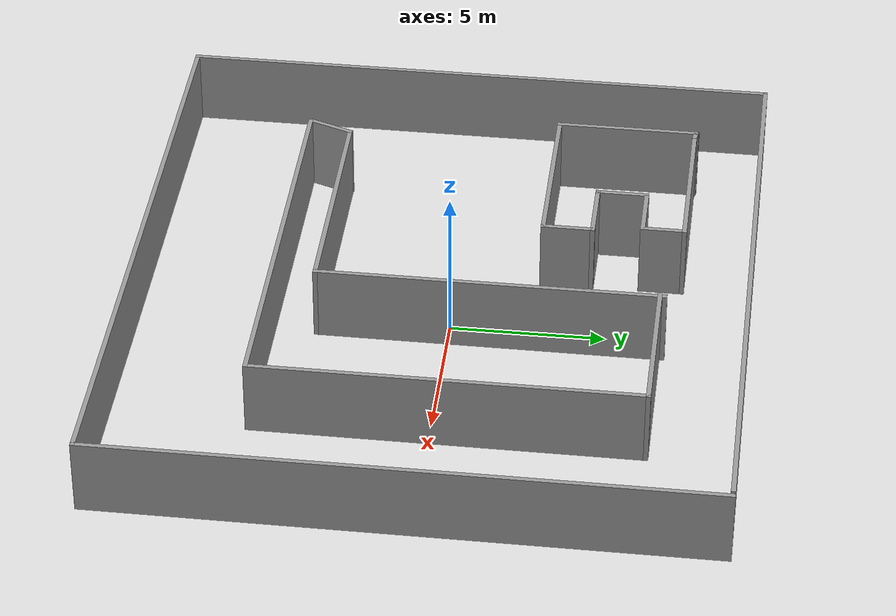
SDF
<?xml version='1.0'?>
<sdf version='1.6'>
  <model name='2'>
    <pose frame=''>-0.451816 -0.29663 0 0 -0 0</pose>
    <link name='Wall_12'>
      <collision name='Wall_12_Collision'>
        <geometry>
          <box>
            <size>21 0.15 2.5</size>
          </box>
        </geometry>
        <pose frame=''>0 0 1.25 0 -0 0</pose>
      </collision>
      <visual name='Wall_12_Visual'>
        <pose frame=''>0 0 1.25 0 -0 0</pose>
        <geometry>
          <box>
            <size>21 0.15 2.5</size>
          </box>
        </geometry>
        <material>
          <script>
            <uri>file://media/materials/scripts/gazebo.material</uri>
            <name>Gazebo/Grey</name>
          </script>
          <ambient>1 1 1 1</ambient>
        </material>
        <meta>
          <layer>0</layer>
        </meta>
      </visual>
      <pose frame=''>-0.125 9.8 0 0 -0 3.14159</pose>
    </link>
    <link name='Wall_14'>
      <collision name='Wall_14_Collision'>
        <geometry>
          <box>
            <size>19.75 0.15 2.5</size>
          </box>
        </geometry>
        <pose frame=''>0 0 1.25 0 -0 0</pose>
      </collision>
      <visual name='Wall_14_Visual'>
        <pose frame=''>0 0 1.25 0 -0 0</pose>
        <geometry>
          <box>
            <size>19.75 0.15 2.5</size>
          </box>
        </geometry>
        <material>
          <script>
            <uri>file://media/materials/scripts/gazebo.material</uri>
            <name>Gazebo/Grey</name>
          </script>
          <ambient>1 1 1 1</ambient>
        </material>
        <meta>
          <layer>0</layer>
        </meta>
      </visual>
      <pose frame=''>-10.55 -0 0 0 -0 -1.5708</pose>
    </link>
    <link name='Wall_15'>
      <collision name='Wall_15_Collision'>
        <geometry>
          <box>
            <size>21.25 0.15 2.5</size>
          </box>
        </geometry>
        <pose frame=''>0 0 1.25 0 -0 0</pose>
      </collision>
      <visual name='Wall_15_Visual'>
        <pose frame=''>0 0 1.25 0 -0 0</pose>
        <geometry>
          <box>
            <size>21.25 0.15 2.5</size>
          </box>
        </geometry>
        <material>
          <script>
            <uri>file://media/materials/scripts/gazebo.material</uri>
            <name>Gazebo/Grey</name>
          </script>
          <ambient>1 1 1 1</ambient>
        </material>
        <meta>
          <layer>0</layer>
        </meta>
      </visual>
      <pose frame=''>-0 -9.8 0 0 -0 0</pose>
    </link>
    <link name='Wall_16'>
      <collision name='Wall_16_Collision'>
        <geometry>
          <box>
            <size>19.75 0.15 2.5</size>
          </box>
        </geometry>
        <pose frame=''>0 0 1.25 0 -0 0</pose>
      </collision>
      <visual name='Wall_16_Visual'>
        <pose frame=''>0 0 1.25 0 -0 0</pose>
        <geometry>
          <box>
            <size>19.75 0.15 2.5</size>
          </box>
        </geometry>
        <material>
          <script>
            <uri>file://media/materials/scripts/gazebo.material</uri>
            <name>Gazebo/Grey</name>
          </script>
          <ambient>1 1 1 1</ambient>
        </material>
        <meta>
          <layer>0</layer>
        </meta>
      </visual>
      <pose frame=''>10.55 -0 0 0 -0 1.5708</pose>
    </link>
    <link name='Wall_21'>
      <collision name='Wall_21_Collision'>
        <geometry>
          <box>
            <size>4.75 0.15 2.5</size>
          </box>
        </geometry>
        <pose frame=''>0 0 1.25 0 -0 0</pose>
      </collision>
      <visual name='Wall_21_Visual'>
        <pose frame=''>0 0 1.25 0 -0 0</pose>
        <geometry>
          <box>
            <size>4.75 0.15 2.5</size>
          </box>
        </geometry>
        <material>
          <script>
            <uri>file://media/materials/scripts/gazebo.material</uri>
            <name>Gazebo/Grey</name>
          </script>
          <ambient>1 1 1 1</ambient>
        </material>
        <meta>
          <layer>0</layer>
        </meta>
      </visual>
      <pose frame=''>-7.91285 5.3199 0 0 -0 -1.5708</pose>
    </link>
    <link name='Wall_22'>
      <collision name='Wall_22_Collision'>
        <geometry>
          <box>
            <size>6 0.15 2.5</size>
          </box>
        </geometry>
        <pose frame=''>0 0 1.25 0 -0 0</pose>
      </collision>
      <visual name='Wall_22_Visual'>
        <pose frame=''>0 0 1.25 0 -0 0</pose>
        <geometry>
          <box>
            <size>6 0.15 2.5</size>
          </box>
        </geometry>
        <material>
          <script>
            <uri>file://media/materials/scripts/gazebo.material</uri>
            <name>Gazebo/Grey</name>
          </script>
          <ambient>1 1 1 1</ambient>
        </material>
        <meta>
          <layer>0</layer>
        </meta>
      </visual>
      <pose frame=''>-4.98785 3.0199 0 0 -0 0</pose>
    </link>
    <link name='Wall_23'>
      <collision name='Wall_23_Collision'>
        <geometry>
          <box>
            <size>1.75 0.15 2.5</size>
          </box>
        </geometry>
        <pose frame=''>0 0 1.25 0 -0 0</pose>
      </collision>
      <visual name='Wall_23_Visual'>
        <pose frame=''>0 0 1.25 0 -0 0</pose>
        <geometry>
          <box>
            <size>1.75 0.15 2.5</size>
          </box>
        </geometry>
        <material>
          <script>
            <uri>file://media/materials/scripts/gazebo.material</uri>
            <name>Gazebo/Grey</name>
          </script>
          <ambient>1 1 1 1</ambient>
        </material>
        <meta>
          <layer>0</layer>
        </meta>
      </visual>
      <pose frame=''>-2.06285 3.8199 0 0 -0 1.5708</pose>
    </link>
    <link name='Wall_24'>
      <collision name='Wall_24_Collision'>
        <geometry>
          <box>
            <size>2.25 0.15 2.5</size>
          </box>
        </geometry>
        <pose frame=''>0 0 1.25 0 -0 0</pose>
      </collision>
      <visual name='Wall_24_Visual'>
        <pose frame=''>0 0 1.25 0 -0 0</pose>
        <geometry>
          <box>
            <size>2.25 0.15 2.5</size>
          </box>
        </geometry>
        <material>
          <script>
            <uri>file://media/materials/scripts/gazebo.material</uri>
            <name>Gazebo/Grey</name>
          </script>
          <ambient>1 1 1 1</ambient>
        </material>
        <meta>
          <layer>0</layer>
        </meta>
      </visual>
      <pose frame=''>-3.11285 4.6199 0 0 -0 3.14159</pose>
    </link>
    <link name='Wall_25'>
      <collision name='Wall_25_Collision'>
        <geometry>
          <box>
            <size>1.75 0.15 2.5</size>
          </box>
        </geometry>
        <pose frame=''>0 0 1.25 0 -0 0</pose>
      </collision>
      <visual name='Wall_25_Visual'>
        <pose frame=''>0 0 1.25 0 -0 0</pose>
        <geometry>
          <box>
            <size>1.75 0.15 2.5</size>
          </box>
        </geometry>
        <material>
          <script>
            <uri>file://media/materials/scripts/gazebo.material</uri>
            <name>Gazebo/Grey</name>
          </script>
          <ambient>1 1 1 1</ambient>
        </material>
        <meta>
          <layer>0</layer>
        </meta>
      </visual>
      <pose frame=''>-4.16285 5.4199 0 0 -0 1.5708</pose>
    </link>
    <link name='Wall_26'>
      <collision name='Wall_26_Collision'>
        <geometry>
          <box>
            <size>2 0.15 2.5</size>
          </box>
        </geometry>
        <pose frame=''>0 0 1.25 0 -0 0</pose>
      </collision>
      <visual name='Wall_26_Visual'>
        <pose frame=''>0 0 1.25 0 -0 0</pose>
        <geometry>
          <box>
            <size>2 0.15 2.5</size>
          </box>
        </geometry>
        <material>
          <script>
            <uri>file://media/materials/scripts/gazebo.material</uri>
            <name>Gazebo/Grey</name>
          </script>
          <ambient>1 1 1 1</ambient>
        </material>
        <meta>
          <layer>0</layer>
        </meta>
      </visual>
      <pose frame=''>-3.23785 6.2199 0 0 -0 0</pose>
    </link>
    <link name='Wall_27'>
      <collision name='Wall_27_Collision'>
        <geometry>
          <box>
            <size>1.5 0.15 2.5</size>
          </box>
        </geometry>
        <pose frame=''>0 0 1.25 0 -0 0</pose>
      </collision>
      <visual name='Wall_27_Visual'>
        <pose frame=''>0 0 1.25 0 -0 0</pose>
        <geometry>
          <box>
            <size>1.5 0.15 2.5</size>
          </box>
        </geometry>
        <material>
          <script>
            <uri>file://media/materials/scripts/gazebo.material</uri>
            <name>Gazebo/Grey</name>
          </script>
          <ambient>1 1 1 1</ambient>
        </material>
        <meta>
          <layer>0</layer>
        </meta>
      </visual>
      <pose frame=''>-2.31285 6.8949 0 0 -0 1.5708</pose>
    </link>
    <link name='Wall_28'>
      <collision name='Wall_28_Collision'>
        <geometry>
          <box>
            <size>5.5 0.15 2.5</size>
          </box>
        </geometry>
        <pose frame=''>0 0 1.25 0 -0 0</pose>
      </collision>
      <visual name='Wall_28_Visual'>
        <pose frame=''>0 0 1.25 0 -0 0</pose>
        <geometry>
          <box>
            <size>5.5 0.15 2.5</size>
          </box>
        </geometry>
        <material>
          <script>
            <uri>file://media/materials/scripts/gazebo.material</uri>
            <name>Gazebo/Grey</name>
          </script>
          <ambient>1 1 1 1</ambient>
        </material>
        <meta>
          <layer>0</layer>
        </meta>
      </visual>
      <pose frame=''>-4.98785 7.5699 0 0 -0 3.14159</pose>
    </link>
    <link name='Wall_29'>
      <collision name='Wall_29_Collision'>
        <geometry>
          <box>
            <size>0.15 0.15 2.5</size>
          </box>
        </geometry>
        <pose frame=''>0 0 1.25 0 -0 0</pose>
      </collision>
      <visual name='Wall_29_Visual'>
        <pose frame=''>0 0 1.25 0 -0 0</pose>
        <geometry>
          <box>
            <size>0.15 0.15 2.5</size>
          </box>
        </geometry>
        <material>
          <script>
            <uri>file://media/materials/scripts/gazebo.material</uri>
            <name>Gazebo/Grey</name>
          </script>
          <ambient>1 1 1 1</ambient>
        </material>
        <meta>
          <layer>0</layer>
        </meta>
      </visual>
      <pose frame=''>-7.66285 7.5699 0 0 -0 0</pose>
    </link>
    <link name='Wall_30'>
      <collision name='Wall_30_Collision'>
        <geometry>
          <box>
            <size>0.404951 0.15 2.5</size>
          </box>
        </geometry>
        <pose frame=''>0 0 1.25 0 -0 0</pose>
      </collision>
      <visual name='Wall_30_Visual'>
        <pose frame=''>0 0 1.25 0 -0 0</pose>
        <geometry>
          <box>
            <size>0.404951 0.15 2.5</size>
          </box>
        </geometry>
        <material>
          <script>
            <uri>file://media/materials/scripts/gazebo.material</uri>
            <name>Gazebo/Grey</name>
          </script>
          <ambient>1 1 1 1</ambient>
        </material>
        <meta>
          <layer>0</layer>
        </meta>
      </visual>
      <pose frame=''>-7.78785 7.5949 0 0 -0 2.9442</pose>
    </link>
    <link name='Wall_32'>
      <collision name='Wall_32_Collision'>
        <geometry>
          <box>
            <size>11.25 0.15 2.5</size>
          </box>
        </geometry>
        <pose frame=''>0 0 1.25 0 -0 0</pose>
      </collision>
      <visual name='Wall_32_Visual'>
        <pose frame=''>0 0 1.25 0 -0 0</pose>
        <geometry>
          <box>
            <size>11.25 0.15 2.5</size>
          </box>
        </geometry>
        <material>
          <script>
            <uri>file://media/materials/scripts/gazebo.material</uri>
            <name>Gazebo/Grey</name>
          </script>
          <ambient>1 1 1 1</ambient>
        </material>
        <meta>
          <layer>0</layer>
        </meta>
      </visual>
      <pose frame=''>1.21982 1.62468 0 0 -0 -1.5708</pose>
    </link>
    <link name='Wall_33'>
      <collision name='Wall_33_Collision'>
        <geometry>
          <box>
            <size>8 0.15 2.5</size>
          </box>
        </geometry>
        <pose frame=''>0 0 1.25 0 -0 0</pose>
      </collision>
      <visual name='Wall_33_Visual'>
        <pose frame=''>0 0 1.25 0 -0 0</pose>
        <geometry>
          <box>
            <size>8 0.15 2.5</size>
          </box>
        </geometry>
        <material>
          <script>
            <uri>file://media/materials/scripts/gazebo.material</uri>
            <name>Gazebo/Grey</name>
          </script>
          <ambient>1 1 1 1</ambient>
        </material>
        <meta>
          <layer>0</layer>
        </meta>
      </visual>
      <pose frame=''>-2.70518 -3.92532 0 0 -0 3.14159</pose>
    </link>
    <link name='Wall_34'>
      <collision name='Wall_34_Collision'>
        <geometry>
          <box>
            <size>1.56864 0.15 2.5</size>
          </box>
        </geometry>
        <pose frame=''>0 0 1.25 0 -0 0</pose>
      </collision>
      <visual name='Wall_34_Visual'>
        <pose frame=''>0 0 1.25 0 -0 0</pose>
        <geometry>
          <box>
            <size>1.56864 0.15 2.5</size>
          </box>
        </geometry>
        <material>
          <script>
            <uri>file://media/materials/scripts/gazebo.material</uri>
            <name>Gazebo/Grey</name>
          </script>
          <ambient>1 1 1 1</ambient>
        </material>
        <meta>
          <layer>0</layer>
        </meta>
      </visual>
      <pose frame=''>-6.87261 -4.59192 0 0 -0 -1.91961</pose>
    </link>
    <link name='Wall_35'>
      <collision name='Wall_35_Collision'>
        <geometry>
          <box>
            <size>13.5 0.15 2.5</size>
          </box>
        </geometry>
        <pose frame=''>0 0 1.25 0 -0 0</pose>
      </collision>
      <visual name='Wall_35_Visual'>
        <pose frame=''>0 0 1.25 0 -0 0</pose>
        <geometry>
          <box>
            <size>13.5 0.15 2.5</size>
          </box>
        </geometry>
        <material>
          <script>
            <uri>file://media/materials/scripts/gazebo.material</uri>
            <name>Gazebo/Grey</name>
          </script>
          <ambient>1 1 1 1</ambient>
        </material>
        <meta>
          <layer>0</layer>
        </meta>
      </visual>
      <pose frame=''>-0.440044 -5.32928 0 0 -0 0</pose>
    </link>
    <link name='Wall_39'>
      <collision name='Wall_39_Collision'>
        <geometry>
          <box>
            <size>12.5 0.15 2.5</size>
          </box>
        </geometry>
        <pose frame=''>0 0 1.25 0 -0 0</pose>
      </collision>
      <visual name='Wall_39_Visual'>
        <pose frame=''>0 0 1.25 0 -0 0</pose>
        <geometry>
          <box>
            <size>12.5 0.15 2.5</size>
          </box>
        </geometry>
        <material>
          <script>
            <uri>file://media/materials/scripts/gazebo.material</uri>
            <name>Gazebo/Grey</name>
          </script>
          <ambient>1 1 1 1</ambient>
        </material>
        <meta>
          <layer>0</layer>
        </meta>
      </visual>
      <pose frame=''>6.23496 0.845715 0 0 -0 1.5708</pose>
    </link>
    <link name='Wall_40'>
      <collision name='Wall_40_Collision'>
        <geometry>
          <box>
            <size>5.25 0.15 2.5</size>
          </box>
        </geometry>
        <pose frame=''>0 0 1.25 0 -0 0</pose>
      </collision>
      <visual name='Wall_40_Visual'>
        <pose frame=''>0 0 1.25 0 -0 0</pose>
        <geometry>
          <box>
            <size>5.25 0.15 2.5</size>
          </box>
        </geometry>
        <material>
          <script>
            <uri>file://media/materials/scripts/gazebo.material</uri>
            <name>Gazebo/Grey</name>
          </script>
          <ambient>1 1 1 1</ambient>
        </material>
        <meta>
          <layer>0</layer>
        </meta>
      </visual>
      <pose frame=''>3.68496 7.02072 0 0 -0 3.14159</pose>
    </link>
    <static>1</static>
  </model>
</sdf>
